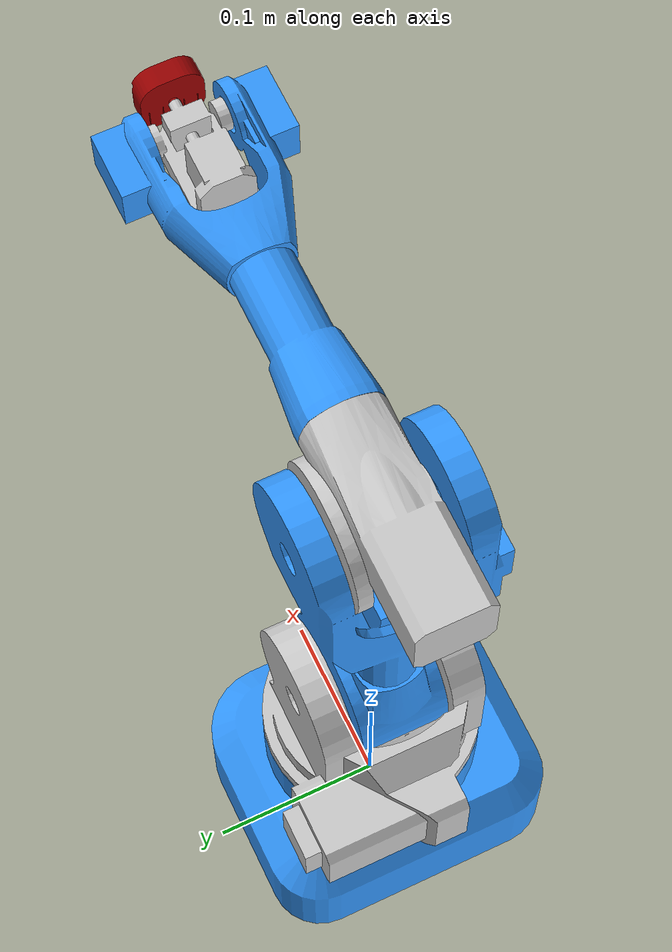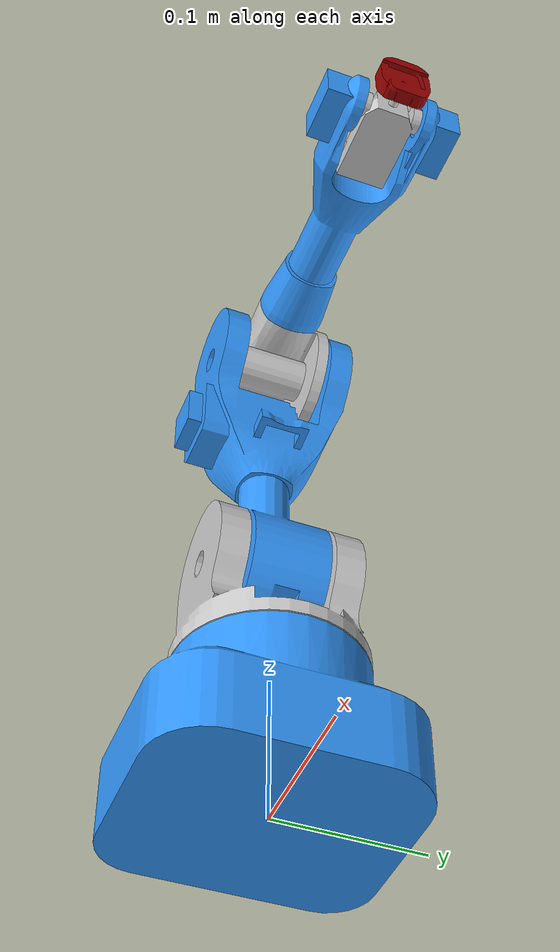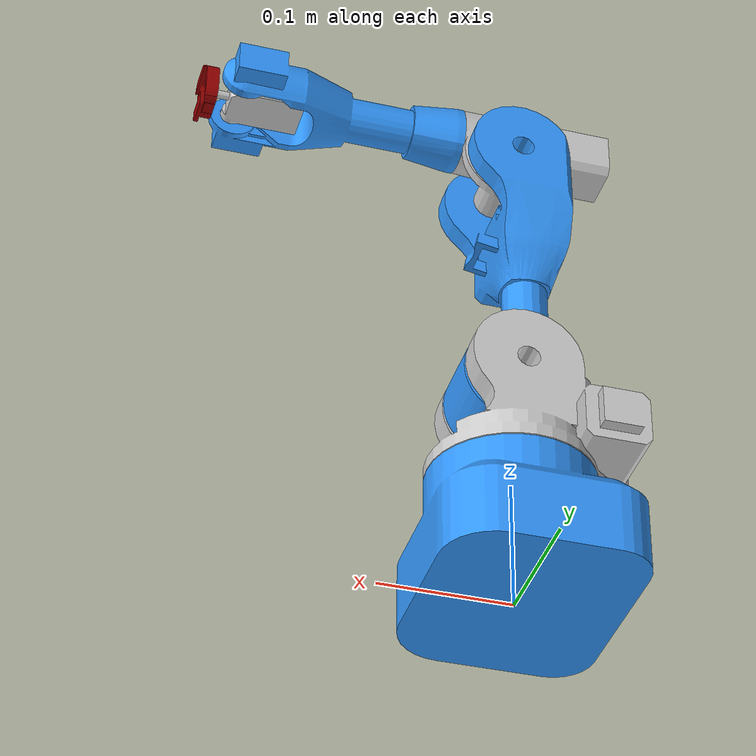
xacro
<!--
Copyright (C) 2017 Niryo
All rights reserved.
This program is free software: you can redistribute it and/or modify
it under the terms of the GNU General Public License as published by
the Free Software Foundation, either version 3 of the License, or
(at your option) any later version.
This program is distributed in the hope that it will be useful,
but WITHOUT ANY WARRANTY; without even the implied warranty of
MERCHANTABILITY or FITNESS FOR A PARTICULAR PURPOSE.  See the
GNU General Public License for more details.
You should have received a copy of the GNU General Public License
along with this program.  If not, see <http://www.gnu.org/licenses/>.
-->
<?xml version="1.0"?>

<robot xmlns:xacro="http://www.ros.org/wiki/xacro" name="niryo_one">

     <!-- Properties -->

    <xacro:property name="distance_origin_shoulder_z" value="0.103" />
    <xacro:property name="distance_shoulder_arm_z" value="0.08" />
    <xacro:property name="distance_arm_elbow_x" value="0.21004" />
    <xacro:property name="distance_arm_elbow_y" value="0.0" />
    <xacro:property name="distance_elbow_forearm_x" value="0.037" />
    <xacro:property name="distance_elbow_forearm_y" value="0.032" />
    <xacro:property name="distance_forearm_wrist_z" value="0.180" />
    <xacro:property name="distance_wrist_hand_x" value="0.018" />
    <xacro:property name="distance_wrist_hand_y" value="0" />
    <xacro:property name="distance_hand_tool" value="0.00" />

	<xacro:property name="PI" value="3.14159265359" />

    <xacro:property name="limit_low_shoulder_rotation" value="-3.05433" />
    <xacro:property name="limit_up_shoulder_rotation" value="3.05433" />
    <xacro:property name="limit_low_arm_rotation" value="${-PI/2}" />
    <xacro:property name="limit_up_arm_rotation" value="0.628319" />
    <xacro:property name="limit_low_elbow_rotation" value="-1.401" />
    <xacro:property name="limit_up_elbow_rotation" value="0.994838" />
    <xacro:property name="limit_low_forearm_rotation" value="-2.61799" />
    <xacro:property name="limit_up_forearm_rotation" value="2.61799" />
    <xacro:property name="limit_low_wrist_rotation" value="-2.26893" />
    <xacro:property name="limit_up_wrist_rotation" value="2.26893" />
    <xacro:property name="limit_low_hand_rotation" value="-2.57" />
    <xacro:property name="limit_up_hand_rotation" value="2.57" />

    <xacro:include filename="$(find niryo_one_description)/urdf/gazebo/niryo_one_v1.gazebo.xacro" />
    <xacro:include filename="$(find niryo_one_description)/urdf/gazebo/utils.xacro" />
    <xacro:include filename="$(find niryo_one_description)/urdf/gazebo/niryo_one.transmission.xacro" />
    <!-- Links -->
    <link name="ground_link"/>

    <link name="base_link">
		<visual>
			<origin xyz="0 0 0" rpy="0 0 0" />
			<geometry>
                <mesh filename="package://niryo_one_description/meshes/v1/collada/base_link.dae" />
			</geometry>
			<material name="">
				<color rgba="0.2 0.6 1 1" />
			</material>
        </visual>
        <collision>
        <origin xyz="0 0 0" rpy="0 0 0" />
            <geometry>
                <mesh filename="package://niryo_one_description/meshes/v1/stl/base_link.stl" />
            </geometry>
        </collision>
        <inertial>
            <origin xyz="0 0 0" rpy="0 0 0"/>
            <mass value="1.3"/>
               <!--to change-->
            <inertia
                ixx="0.0" ixy="0.0" ixz="0.0"
                iyy="0.0" iyz="0.0"
                izz="0.0"/>
            </inertial>
    </link>
    <link name="shoulder_link">
		<visual>
			<origin xyz="0 0 0" rpy="0 0 0" />
			<geometry>
                <mesh filename="package://niryo_one_description/meshes/v1/collada/shoulder_link.dae" />
			</geometry>
			<material name="">
				<color rgba="0.8 0.8 0.8 1" />
			</material>
		</visual>
        <collision>
            <origin xyz="0 0 0" rpy="0 0 0" />
            <geometry>
                <mesh filename="package://niryo_one_description/meshes/v1/stl/shoulder_link.stl" />
            </geometry>
        </collision>
        <inertial>
            <origin xyz="0 0 0" rpy="0 0 0"/>
            <mass value="0.6"/>
            <inertia
                ixx="1.0" ixy="0.0" ixz="0.0"
                iyy="1.0" iyz="0.0"
                izz="1.0"/>
        </inertial>
    </link>

    <link name="arm_link">
		<visual>
			<origin xyz="0 0 0" rpy="0 0 0" />
			<geometry>
                <mesh filename="package://niryo_one_description/meshes/v1/collada/arm_link.dae" />
			</geometry>
			<material name="">
				<color rgba="0.2 0.6 1 1" />
			</material>
		</visual>
        <collision>
               <origin xyz="0 0 0" rpy="0 0 0" />
            <geometry>
                <mesh filename="package://niryo_one_description/meshes/v1/stl/arm_link.stl" />
            </geometry>
        </collision>
        <inertial>
            <origin xyz="0 0 0" rpy="0 0 0"/>
            <mass value="0.5"/>
            <inertia
                ixx="1.0" ixy="0.0" ixz="0.0"
                iyy="1.0" iyz="0.0"
                izz="1.0"/>
        </inertial>
    </link>

    <link name="elbow_link">
		<visual>
			<origin xyz="0 0 0" rpy="0 0 0" />
			<geometry>
                <mesh filename="package://niryo_one_description/meshes/v1/collada/elbow_link.dae" />
			</geometry>
			<material name="">
				<color rgba="0.8 0.8 0.8 1" />
			</material>
		</visual>
        <collision>
               <origin xyz="0 0 0" rpy="0 0 0" />
            <geometry>
                <mesh filename="package://niryo_one_description/meshes/v1/stl/elbow_link.stl" />
            </geometry>
        </collision>
        <inertial>
            <origin xyz="0 0 0" rpy="0 0 0"/>
            <mass value="0.4"/>
            <inertia
                ixx="1.0" ixy="0.0" ixz="0.0"
                iyy="1.0" iyz="0.0"
                izz="1.0"/>
        </inertial>

    </link>

    <link name="forearm_link">
		<visual>
			<origin xyz="0 0 0" rpy="0 0 0" />
			<geometry>
                <mesh filename="package://niryo_one_description/meshes/v1/collada/forearm_link.dae" />
			</geometry>
			<material name="">
				<color rgba="0.2 0.6 1 1" />
			</material>
		</visual>
        <collision>
               <origin xyz="0 0 0" rpy="0 0 0" />
            <geometry>
                <mesh filename="package://niryo_one_description/meshes/v1/stl/forearm_link.stl" />
            </geometry>
        </collision>
        <inertial>
            <origin xyz="0 0 0" rpy="0 0 0"/>
            <mass value="0.3"/>
            <inertia
                ixx="1.0" ixy="0.0" ixz="0.0"
                iyy="1.0" iyz="0.0"
                izz="1.0"/>
        </inertial>

    </link>

    <link name="wrist_link">
		<visual>
			<origin xyz="0 0 0" rpy="0 0 0" />
			<geometry>
                <mesh filename="package://niryo_one_description/meshes/v1/collada/wrist_link.dae" />
			</geometry>
			<material name="">
				<color rgba="0.8 0.8 0.8 1" />
			</material>
		</visual>
        <collision>
               <origin xyz="0 0 0" rpy="0 0 0" />
            <geometry>
                <mesh filename="package://niryo_one_description/meshes/v1/stl/wrist_link.stl" />
            </geometry>
        </collision>
        <inertial>
            <origin xyz="0 0 0" rpy="0 0 0"/>
            <mass value="0.2"/>
            <inertia
                ixx="1.0" ixy="0.0" ixz="0.0"
                iyy="1.0" iyz="0.0"
                izz="1.0"/>
        </inertial>
    </link>

    <link name="hand_link">
		<visual>
			<origin xyz="0 0 0" rpy="0 0 0" />
			<geometry>
                <mesh filename="package://niryo_one_description/meshes/v1/collada/hand_link.dae" />
			</geometry>
			<material name="">
				<color rgba="0.6 0 0 1" />
			</material>
		</visual>
        <collision>
               <origin xyz="0 0 0" rpy="0 0 0" />
            <geometry>
                <mesh filename="package://niryo_one_description/meshes/v1/stl/hand_link.stl" />
            </geometry>
        </collision>
          <inertial>
                <origin xyz="0 0 0" rpy="0 0 0"/>
                <mass value="0.1"/>
                <inertia
                  ixx="1.0" ixy="0.0" ixz="0.0"
                  iyy="1.0" iyz="0.0"
                  izz="1.0"/>
         </inertial>
     </link>

    <link name="tool_link">
	</link>

     <!--Joints -->

    <joint name="ground_joint" type="fixed">
        <parent link="ground_link" />
        <child link="base_link" />
        <origin xyz="0.0 0.0 0" rpy="0 0 0" />
    </joint>
    <joint name="joint_1" type="revolute">
        <parent link="base_link" />
        <child link="shoulder_link" />
          <origin xyz="0 0 ${distance_origin_shoulder_z}" rpy="0 0 0" />
          <axis xyz="0 0 1" />
          <limit effort="1" velocity="1.0" lower="${limit_low_shoulder_rotation}" upper="${limit_up_shoulder_rotation}" />
    </joint>

    <joint name="joint_2" type="revolute">
        <parent link="shoulder_link" />
        <child link="arm_link" />
        <origin xyz="0 0 ${distance_shoulder_arm_z}" rpy="${PI/2} ${-PI/2} 0" />
          <limit effort="1" velocity="1.0" lower="${limit_low_arm_rotation}" upper="${limit_up_arm_rotation}" />
          <axis xyz="0 0 1" />
    </joint>

    <joint name="joint_3" type="revolute">
        <parent link="arm_link" />
        <child link="elbow_link" />
        <origin xyz="${distance_arm_elbow_x} ${distance_arm_elbow_y} 0" rpy="0 0 ${-PI/2}" />
          <limit effort="1" velocity="1.0" lower="${limit_low_elbow_rotation}" upper="${limit_up_elbow_rotation}" />
          <axis xyz="0 0 1" />
    </joint>

    <joint name="joint_4" type="revolute">
        <parent link="elbow_link" />
        <child link="forearm_link" />
        <origin xyz="${distance_elbow_forearm_x} ${distance_elbow_forearm_y} 0" rpy="0 ${PI/2} 0" />
          <limit effort="1" velocity="1.0" lower="${limit_low_forearm_rotation}" upper="${limit_up_forearm_rotation}" />
          <axis xyz="0 0 1" />
    </joint>

    <joint name="joint_5" type="revolute">
        <parent link="forearm_link" />
        <child link="wrist_link" />
          <origin xyz="0 0 ${distance_forearm_wrist_z}" rpy="0 ${-PI/2} 0" />
          <limit effort="1" velocity="1.0" lower="${limit_low_wrist_rotation}" upper="${limit_up_wrist_rotation}" />
          <axis xyz="0 0 1" />
    </joint>

    <joint name="joint_6" type="revolute">
        <parent link="wrist_link" />
        <child link="hand_link" />
        <origin xyz="${distance_wrist_hand_x} ${distance_wrist_hand_y} 0" rpy="0 ${PI/2} 0" />
          <limit effort="1" velocity="1.0" lower="${limit_low_hand_rotation}" upper="${limit_up_hand_rotation}" />
          <axis xyz="0 0 1" />

	</joint>
    <joint name="hand_tool_joint" type="fixed">
        <parent link="hand_link" />
        <child link="tool_link" />
        <origin xyz="0 0 ${distance_hand_tool}" rpy="${-PI/2} ${-PI/2} 0" />
	</joint>
     <!--plugin-->

    <gazebo>
            <plugin name="gazebo_ros_control" filename="libgazebo_ros_control.so">
            </plugin>
    </gazebo>

</robot>
